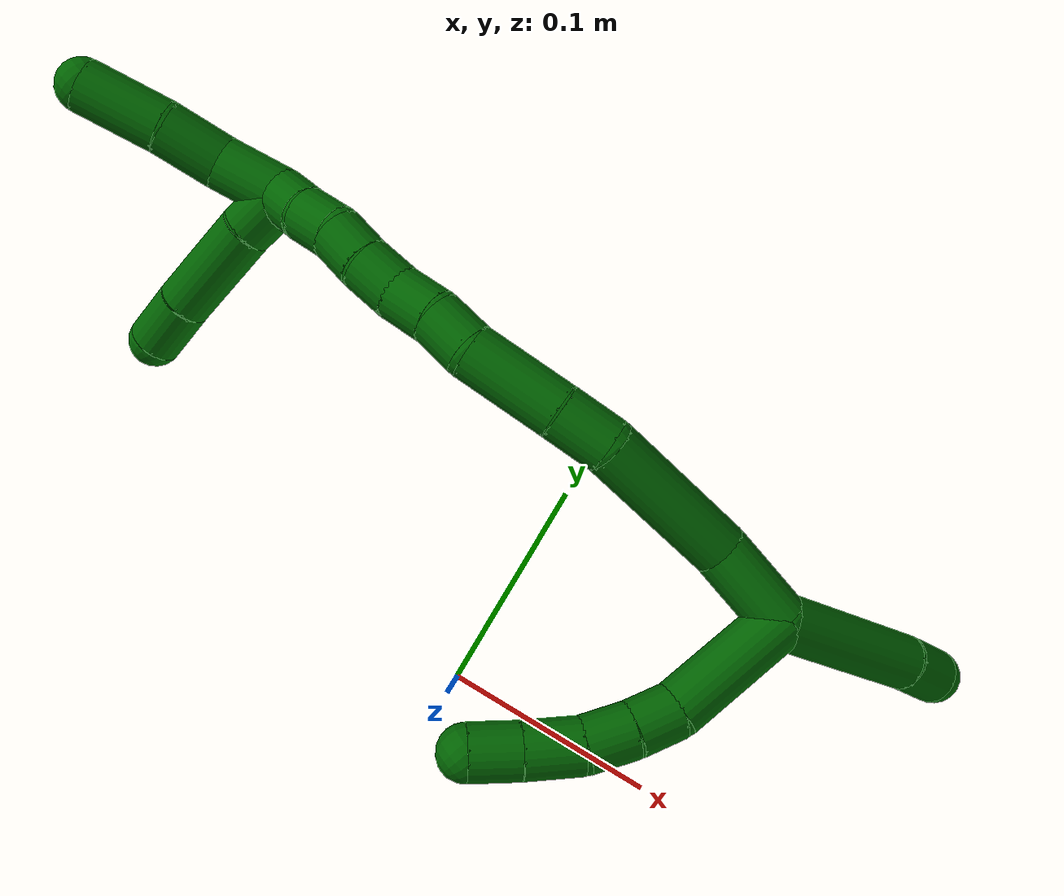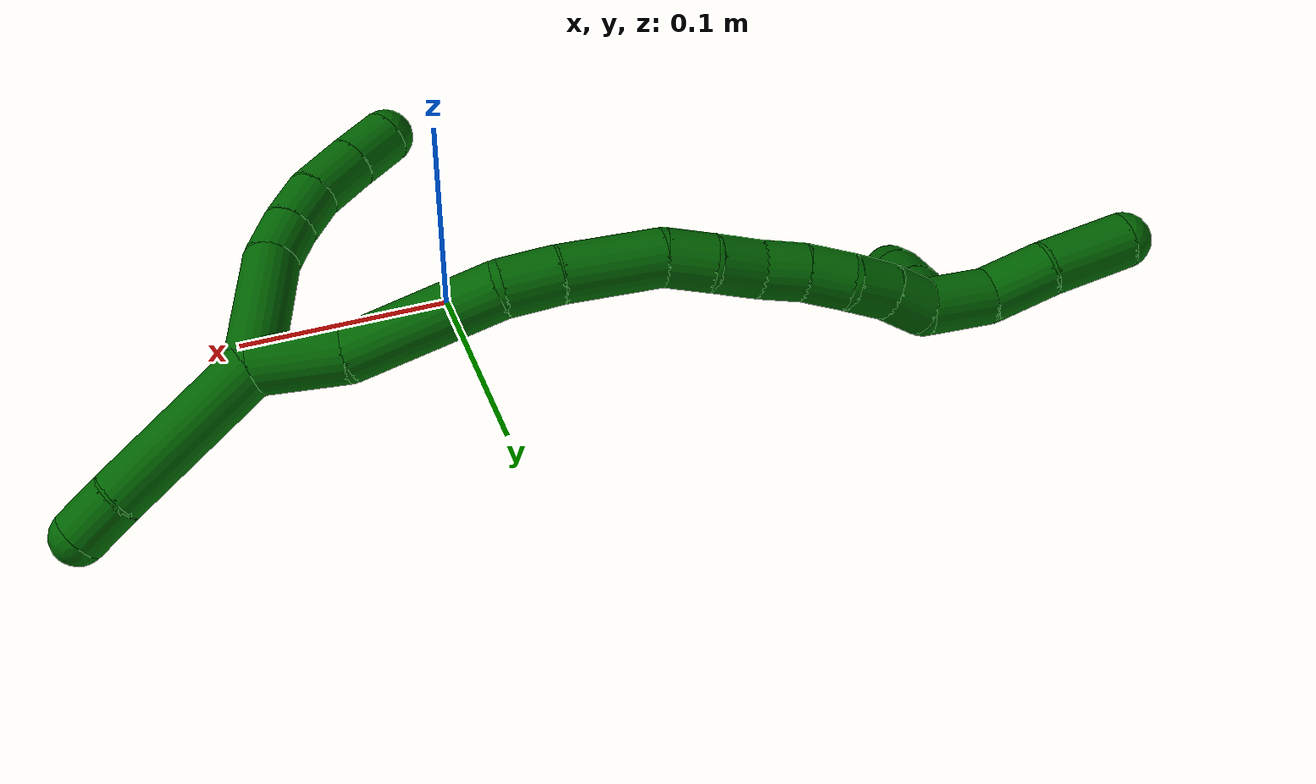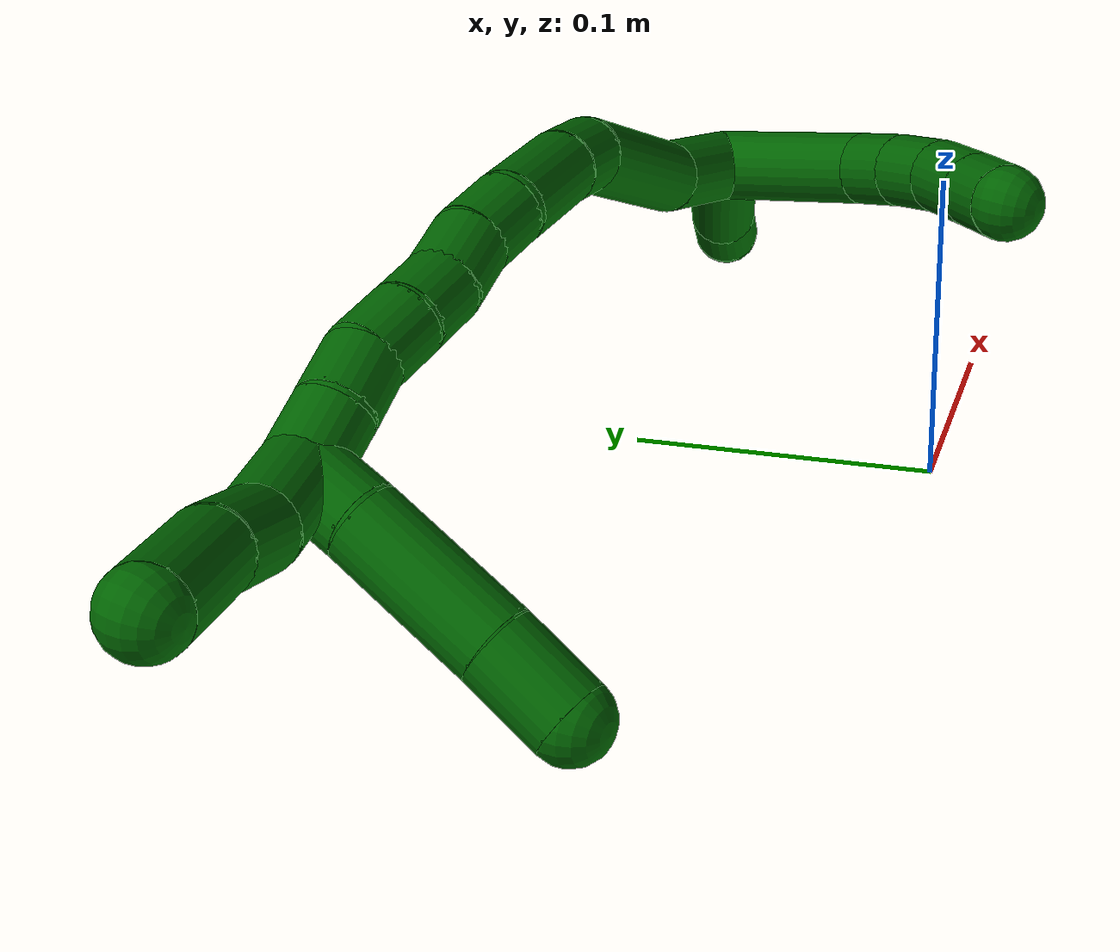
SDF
<sdf version="1.7">
 <world name="default">
  <model name="6">
   <static>0</static>
   <link name="6">
    <collision name="collision-cylinder-e_1_2_8">
     <pose>0.001377 0.006499 0.029162 -0.219286 0.046066 -0.005072</pose>
     <geometry><cylinder><radius>0.0125</radius><length>0.059818</length></cylinder></geometry>
     <surface>
      <friction><ode><mu>1.16</mu><mu2>1.16</mu2><slip1>0</slip1><slip2>0</slip2></ode></friction>
      <contact><ode><kp>1e+06</kp><kd>1</kd><max_vel>0</max_vel><min_depth>0.001</min_depth></ode></contact>
     </surface>
    </collision>
    <visual name="visual-cylinder-e_1_2_8">
     <pose>0.001377 0.006499 0.029162 -0.219286 0.046066 -0.005072</pose>
     <geometry><cylinder><radius>0.0125</radius><length>0.059818</length></cylinder></geometry>
     <material><ambient>0 0.392157 0.003922 1</ambient></material>
    </visual>
    <collision name="collision-cylinder-e_2_8_9">
     <pose>0.000774 0.0165 0.067615 -0.360408 -0.196935 0.03599</pose>
     <geometry><cylinder><radius>0.0125</radius><length>0.02025</length></cylinder></geometry>
     <surface>
      <friction><ode><mu>1.16</mu><mu2>1.16</mu2><slip1>0</slip1><slip2>0</slip2></ode></friction>
      <contact><ode><kp>1e+06</kp><kd>1</kd><max_vel>0</max_vel><min_depth>0.001</min_depth></ode></contact>
     </surface>
    </collision>
    <visual name="visual-cylinder-e_2_8_9">
     <pose>0.000774 0.0165 0.067615 -0.360408 -0.196935 0.03599</pose>
     <geometry><cylinder><radius>0.0125</radius><length>0.02025</length></cylinder></geometry>
     <material><ambient>0 0.392157 0.003922 1</ambient></material>
    </visual>
    <collision name="collision-cylinder-e_3_9_10">
     <pose>-0.00447 0.023623 0.086553 -0.359084 -0.30665 0.056081</pose>
     <geometry><cylinder><radius>0.0125</radius><length>0.021616</length></cylinder></geometry>
     <surface>
      <friction><ode><mu>1.16</mu><mu2>1.16</mu2><slip1>0</slip1><slip2>0</slip2></ode></friction>
      <contact><ode><kp>1e+06</kp><kd>1</kd><max_vel>0</max_vel><min_depth>0.001</min_depth></ode></contact>
     </surface>
    </collision>
    <visual name="visual-cylinder-e_3_9_10">
     <pose>-0.00447 0.023623 0.086553 -0.359084 -0.30665 0.056081</pose>
     <geometry><cylinder><radius>0.0125</radius><length>0.021616</length></cylinder></geometry>
     <material><ambient>0 0.392157 0.003922 1</ambient></material>
    </visual>
    <collision name="collision-cylinder-e_4_10_11">
     <pose>-0.014172 0.031572 0.106371 -0.402331 -0.527474 0.110019</pose>
     <geometry><cylinder><radius>0.0125</radius><length>0.025585</length></cylinder></geometry>
     <surface>
      <friction><ode><mu>1.16</mu><mu2>1.16</mu2><slip1>0</slip1><slip2>0</slip2></ode></friction>
      <contact><ode><kp>1e+06</kp><kd>1</kd><max_vel>0</max_vel><min_depth>0.001</min_depth></ode></contact>
     </surface>
    </collision>
    <visual name="visual-cylinder-e_4_10_11">
     <pose>-0.014172 0.031572 0.106371 -0.402331 -0.527474 0.110019</pose>
     <geometry><cylinder><radius>0.0125</radius><length>0.025585</length></cylinder></geometry>
     <material><ambient>0 0.392157 0.003922 1</ambient></material>
    </visual>
    <collision name="collision-cylinder-e_5_11_6">
     <pose>-0.026741 0.039955 0.125212 -0.437451 -0.569637 0.129975</pose>
     <geometry><cylinder><radius>0.0125</radius><length>0.02273</length></cylinder></geometry>
     <surface>
      <friction><ode><mu>1.16</mu><mu2>1.16</mu2><slip1>0</slip1><slip2>0</slip2></ode></friction>
      <contact><ode><kp>1e+06</kp><kd>1</kd><max_vel>0</max_vel><min_depth>0.001</min_depth></ode></contact>
     </surface>
    </collision>
    <visual name="visual-cylinder-e_5_11_6">
     <pose>-0.026741 0.039955 0.125212 -0.437451 -0.569637 0.129975</pose>
     <geometry><cylinder><radius>0.0125</radius><length>0.02273</length></cylinder></geometry>
     <material><ambient>0 0.392157 0.003922 1</ambient></material>
    </visual>
    <collision name="collision-cylinder-e_1_2_12">
     <pose>0.019204 -0.029091 -0.015969 2.07283 0.5246 0.851795</pose>
     <geometry><cylinder><radius>0.0125</radius><length>0.076683</length></cylinder></geometry>
     <surface>
      <friction><ode><mu>1.16</mu><mu2>1.16</mu2><slip1>0</slip1><slip2>0</slip2></ode></friction>
      <contact><ode><kp>1e+06</kp><kd>1</kd><max_vel>0</max_vel><min_depth>0.001</min_depth></ode></contact>
     </surface>
    </collision>
    <visual name="visual-cylinder-e_1_2_12">
     <pose>0.019204 -0.029091 -0.015969 2.07283 0.5246 0.851795</pose>
     <geometry><cylinder><radius>0.0125</radius><length>0.076683</length></cylinder></geometry>
     <material><ambient>0 0.392157 0.003922 1</ambient></material>
    </visual>
    <collision name="collision-cylinder-e_2_12_5">
     <pose>0.043834 -0.067791 -0.035699 1.94377 0.48406 0.694105</pose>
     <geometry><cylinder><radius>0.0125</radius><length>0.023317</length></cylinder></geometry>
     <surface>
      <friction><ode><mu>1.16</mu><mu2>1.16</mu2><slip1>0</slip1><slip2>0</slip2></ode></friction>
      <contact><ode><kp>1e+06</kp><kd>1</kd><max_vel>0</max_vel><min_depth>0.001</min_depth></ode></contact>
     </surface>
    </collision>
    <visual name="visual-cylinder-e_2_12_5">
     <pose>0.043834 -0.067791 -0.035699 1.94377 0.48406 0.694105</pose>
     <geometry><cylinder><radius>0.0125</radius><length>0.023317</length></cylinder></geometry>
     <material><ambient>0 0.392157 0.003922 1</ambient></material>
    </visual>
    <collision name="collision-cylinder-e_1_2_13">
     <pose>-0.017945 0.009287 0.000201 -1.54913 -1.09312 1.07397</pose>
     <geometry><cylinder><radius>0.0125</radius><length>0.040413</length></cylinder></geometry>
     <surface>
      <friction><ode><mu>1.16</mu><mu2>1.16</mu2><slip1>0</slip1><slip2>0</slip2></ode></friction>
      <contact><ode><kp>1e+06</kp><kd>1</kd><max_vel>0</max_vel><min_depth>0.001</min_depth></ode></contact>
     </surface>
    </collision>
    <visual name="visual-cylinder-e_1_2_13">
     <pose>-0.017945 0.009287 0.000201 -1.54913 -1.09312 1.07397</pose>
     <geometry><cylinder><radius>0.0125</radius><length>0.040413</length></cylinder></geometry>
     <material><ambient>0 0.392157 0.003922 1</ambient></material>
    </visual>
    <collision name="collision-cylinder-e_2_13_14">
     <pose>-0.061444 0.041164 0.004609 -1.38669 -0.838431 0.709305</pose>
     <geometry><cylinder><radius>0.0125</radius><length>0.068732</length></cylinder></geometry>
     <surface>
      <friction><ode><mu>1.16</mu><mu2>1.16</mu2><slip1>0</slip1><slip2>0</slip2></ode></friction>
      <contact><ode><kp>1e+06</kp><kd>1</kd><max_vel>0</max_vel><min_depth>0.001</min_depth></ode></contact>
     </surface>
    </collision>
    <visual name="visual-cylinder-e_2_13_14">
     <pose>-0.061444 0.041164 0.004609 -1.38669 -0.838431 0.709305</pose>
     <geometry><cylinder><radius>0.0125</radius><length>0.068732</length></cylinder></geometry>
     <material><ambient>0 0.392157 0.003922 1</ambient></material>
    </visual>
    <collision name="collision-cylinder-e_3_14_15">
     <pose>-0.097789 0.068899 0.011991 -1.01782 -1.0601 0.631969</pose>
     <geometry><cylinder><radius>0.0125</radius><length>0.02474</length></cylinder></geometry>
     <surface>
      <friction><ode><mu>1.16</mu><mu2>1.16</mu2><slip1>0</slip1><slip2>0</slip2></ode></friction>
      <contact><ode><kp>1e+06</kp><kd>1</kd><max_vel>0</max_vel><min_depth>0.001</min_depth></ode></contact>
     </surface>
    </collision>
    <visual name="visual-cylinder-e_3_14_15">
     <pose>-0.097789 0.068899 0.011991 -1.01782 -1.0601 0.631969</pose>
     <geometry><cylinder><radius>0.0125</radius><length>0.02474</length></cylinder></geometry>
     <material><ambient>0 0.392157 0.003922 1</ambient></material>
    </visual>
    <collision name="collision-cylinder-e_4_15_16">
     <pose>-0.128532 0.081192 0.020911 -0.893851 -1.13993 0.596047</pose>
     <geometry><cylinder><radius>0.0125</radius><length>0.043915</length></cylinder></geometry>
     <surface>
      <friction><ode><mu>1.16</mu><mu2>1.16</mu2><slip1>0</slip1><slip2>0</slip2></ode></friction>
      <contact><ode><kp>1e+06</kp><kd>1</kd><max_vel>0</max_vel><min_depth>0.001</min_depth></ode></contact>
     </surface>
    </collision>
    <visual name="visual-cylinder-e_4_15_16">
     <pose>-0.128532 0.081192 0.020911 -0.893851 -1.13993 0.596047</pose>
     <geometry><cylinder><radius>0.0125</radius><length>0.043915</length></cylinder></geometry>
     <material><ambient>0 0.392157 0.003922 1</ambient></material>
    </visual>
    <collision name="collision-cylinder-e_5_16_17">
     <pose>-0.158873 0.089615 0.027623 -0.921468 -1.41802 0.805072</pose>
     <geometry><cylinder><radius>0.0125</radius><length>0.021026</length></cylinder></geometry>
     <surface>
      <friction><ode><mu>1.16</mu><mu2>1.16</mu2><slip1>0</slip1><slip2>0</slip2></ode></friction>
      <contact><ode><kp>1e+06</kp><kd>1</kd><max_vel>0</max_vel><min_depth>0.001</min_depth></ode></contact>
     </surface>
    </collision>
    <visual name="visual-cylinder-e_5_16_17">
     <pose>-0.158873 0.089615 0.027623 -0.921468 -1.41802 0.805072</pose>
     <geometry><cylinder><radius>0.0125</radius><length>0.021026</length></cylinder></geometry>
     <material><ambient>0 0.392157 0.003922 1</ambient></material>
    </visual>
    <collision name="collision-cylinder-e_6_17_18">
     <pose>-0.179494 0.090883 0.031218 0.002251 -1.3194 -0.001746</pose>
     <geometry><cylinder><radius>0.0125</radius><length>0.021125</length></cylinder></geometry>
     <surface>
      <friction><ode><mu>1.16</mu><mu2>1.16</mu2><slip1>0</slip1><slip2>0</slip2></ode></friction>
      <contact><ode><kp>1e+06</kp><kd>1</kd><max_vel>0</max_vel><min_depth>0.001</min_depth></ode></contact>
     </surface>
    </collision>
    <visual name="visual-cylinder-e_6_17_18">
     <pose>-0.179494 0.090883 0.031218 0.002251 -1.3194 -0.001746</pose>
     <geometry><cylinder><radius>0.0125</radius><length>0.021125</length></cylinder></geometry>
     <material><ambient>0 0.392157 0.003922 1</ambient></material>
    </visual>
    <collision name="collision-cylinder-e_7_18_19">
     <pose>-0.199538 0.092339 0.035245 -0.807259 -1.36752 0.669827</pose>
     <geometry><cylinder><radius>0.0125</radius><length>0.02004</length></cylinder></geometry>
     <surface>
      <friction><ode><mu>1.16</mu><mu2>1.16</mu2><slip1>0</slip1><slip2>0</slip2></ode></friction>
      <contact><ode><kp>1e+06</kp><kd>1</kd><max_vel>0</max_vel><min_depth>0.001</min_depth></ode></contact>
     </surface>
    </collision>
    <visual name="visual-cylinder-e_7_18_19">
     <pose>-0.199538 0.092339 0.035245 -0.807259 -1.36752 0.669827</pose>
     <geometry><cylinder><radius>0.0125</radius><length>0.02004</length></cylinder></geometry>
     <material><ambient>0 0.392157 0.003922 1</ambient></material>
    </visual>
    <collision name="collision-cylinder-e_8_19_20">
     <pose>-0.219329 0.09435 0.037081 -0.89818 -1.50051 0.844371</pose>
     <geometry><cylinder><radius>0.0125</radius><length>0.020004</length></cylinder></geometry>
     <surface>
      <friction><ode><mu>1.16</mu><mu2>1.16</mu2><slip1>0</slip1><slip2>0</slip2></ode></friction>
      <contact><ode><kp>1e+06</kp><kd>1</kd><max_vel>0</max_vel><min_depth>0.001</min_depth></ode></contact>
     </surface>
    </collision>
    <visual name="visual-cylinder-e_8_19_20">
     <pose>-0.219329 0.09435 0.037081 -0.89818 -1.50051 0.844371</pose>
     <geometry><cylinder><radius>0.0125</radius><length>0.020004</length></cylinder></geometry>
     <material><ambient>0 0.392157 0.003922 1</ambient></material>
    </visual>
    <collision name="collision-cylinder-e_9_20_21">
     <pose>-0.23895 0.093874 0.039968 0.396213 -1.30214 -0.303532</pose>
     <geometry><cylinder><radius>0.0125</radius><length>0.020004</length></cylinder></geometry>
     <surface>
      <friction><ode><mu>1.16</mu><mu2>1.16</mu2><slip1>0</slip1><slip2>0</slip2></ode></friction>
      <contact><ode><kp>1e+06</kp><kd>1</kd><max_vel>0</max_vel><min_depth>0.001</min_depth></ode></contact>
     </surface>
    </collision>
    <visual name="visual-cylinder-e_9_20_21">
     <pose>-0.23895 0.093874 0.039968 0.396213 -1.30214 -0.303532</pose>
     <geometry><cylinder><radius>0.0125</radius><length>0.020004</length></cylinder></geometry>
     <material><ambient>0 0.392157 0.003922 1</ambient></material>
    </visual>
    <collision name="collision-cylinder-e_10_21_1">
     <pose>-0.258217 0.090561 0.043882 1.00156 -1.29557 -0.785314</pose>
     <geometry><cylinder><radius>0.0125</radius><length>0.020002</length></cylinder></geometry>
     <surface>
      <friction><ode><mu>1.16</mu><mu2>1.16</mu2><slip1>0</slip1><slip2>0</slip2></ode></friction>
      <contact><ode><kp>1e+06</kp><kd>1</kd><max_vel>0</max_vel><min_depth>0.001</min_depth></ode></contact>
     </surface>
    </collision>
    <visual name="visual-cylinder-e_10_21_1">
     <pose>-0.258217 0.090561 0.043882 1.00156 -1.29557 -0.785314</pose>
     <geometry><cylinder><radius>0.0125</radius><length>0.020002</length></cylinder></geometry>
     <material><ambient>0 0.392157 0.003922 1</ambient></material>
    </visual>
    <collision name="collision-cylinder-e_1_1_22">
     <pose>-0.269537 0.084759 0.056413 0.307343 -0.144975 -0.022494</pose>
     <geometry><cylinder><radius>0.0125</radius><length>0.023466</length></cylinder></geometry>
     <surface>
      <friction><ode><mu>1.16</mu><mu2>1.16</mu2><slip1>0</slip1><slip2>0</slip2></ode></friction>
      <contact><ode><kp>1e+06</kp><kd>1</kd><max_vel>0</max_vel><min_depth>0.001</min_depth></ode></contact>
     </surface>
    </collision>
    <visual name="visual-cylinder-e_1_1_22">
     <pose>-0.269537 0.084759 0.056413 0.307343 -0.144975 -0.022494</pose>
     <geometry><cylinder><radius>0.0125</radius><length>0.023466</length></cylinder></geometry>
     <material><ambient>0 0.392157 0.003922 1</ambient></material>
    </visual>
    <collision name="collision-cylinder-e_2_22_23">
     <pose>-0.274299 0.071157 0.089835 0.423947 -0.124418 -0.026809</pose>
     <geometry><cylinder><radius>0.0125</radius><length>0.049437</length></cylinder></geometry>
     <surface>
      <friction><ode><mu>1.16</mu><mu2>1.16</mu2><slip1>0</slip1><slip2>0</slip2></ode></friction>
      <contact><ode><kp>1e+06</kp><kd>1</kd><max_vel>0</max_vel><min_depth>0.001</min_depth></ode></contact>
     </surface>
    </collision>
    <visual name="visual-cylinder-e_2_22_23">
     <pose>-0.274299 0.071157 0.089835 0.423947 -0.124418 -0.026809</pose>
     <geometry><cylinder><radius>0.0125</radius><length>0.049437</length></cylinder></geometry>
     <material><ambient>0 0.392157 0.003922 1</ambient></material>
    </visual>
    <collision name="collision-cylinder-e_3_23_4">
     <pose>-0.279122 0.054743 0.124043 0.490172 -0.129883 -0.032528</pose>
     <geometry><cylinder><radius>0.0125</radius><length>0.027097</length></cylinder></geometry>
     <surface>
      <friction><ode><mu>1.16</mu><mu2>1.16</mu2><slip1>0</slip1><slip2>0</slip2></ode></friction>
      <contact><ode><kp>1e+06</kp><kd>1</kd><max_vel>0</max_vel><min_depth>0.001</min_depth></ode></contact>
     </surface>
    </collision>
    <visual name="visual-cylinder-e_3_23_4">
     <pose>-0.279122 0.054743 0.124043 0.490172 -0.129883 -0.032528</pose>
     <geometry><cylinder><radius>0.0125</radius><length>0.027097</length></cylinder></geometry>
     <material><ambient>0 0.392157 0.003922 1</ambient></material>
    </visual>
    <collision name="collision-cylinder-e_1_1_24">
     <pose>-0.281965 0.092058 0.050895 -0.598896 -1.12685 0.385233</pose>
     <geometry><cylinder><radius>0.0125</radius><length>0.031279</length></cylinder></geometry>
     <surface>
      <friction><ode><mu>1.16</mu><mu2>1.16</mu2><slip1>0</slip1><slip2>0</slip2></ode></friction>
      <contact><ode><kp>1e+06</kp><kd>1</kd><max_vel>0</max_vel><min_depth>0.001</min_depth></ode></contact>
     </surface>
    </collision>
    <visual name="visual-cylinder-e_1_1_24">
     <pose>-0.281965 0.092058 0.050895 -0.598896 -1.12685 0.385233</pose>
     <geometry><cylinder><radius>0.0125</radius><length>0.031279</length></cylinder></geometry>
     <material><ambient>0 0.392157 0.003922 1</ambient></material>
    </visual>
    <collision name="collision-cylinder-e_2_24_25">
     <pose>-0.307445 0.103928 0.061089 -1.04913 -0.883422 0.534173</pose>
     <geometry><cylinder><radius>0.0125</radius><length>0.029387</length></cylinder></geometry>
     <surface>
      <friction><ode><mu>1.16</mu><mu2>1.16</mu2><slip1>0</slip1><slip2>0</slip2></ode></friction>
      <contact><ode><kp>1e+06</kp><kd>1</kd><max_vel>0</max_vel><min_depth>0.001</min_depth></ode></contact>
     </surface>
    </collision>
    <visual name="visual-cylinder-e_2_24_25">
     <pose>-0.307445 0.103928 0.061089 -1.04913 -0.883422 0.534173</pose>
     <geometry><cylinder><radius>0.0125</radius><length>0.029387</length></cylinder></geometry>
     <material><ambient>0 0.392157 0.003922 1</ambient></material>
    </visual>
    <collision name="collision-cylinder-e_3_25_3">
     <pose>-0.335047 0.120194 0.073214 -0.830285 -0.971967 0.457502</pose>
     <geometry><cylinder><radius>0.0125</radius><length>0.039334</length></cylinder></geometry>
     <surface>
      <friction><ode><mu>1.16</mu><mu2>1.16</mu2><slip1>0</slip1><slip2>0</slip2></ode></friction>
      <contact><ode><kp>1e+06</kp><kd>1</kd><max_vel>0</max_vel><min_depth>0.001</min_depth></ode></contact>
     </surface>
    </collision>
    <visual name="visual-cylinder-e_3_25_3">
     <pose>-0.335047 0.120194 0.073214 -0.830285 -0.971967 0.457502</pose>
     <geometry><cylinder><radius>0.0125</radius><length>0.039334</length></cylinder></geometry>
     <material><ambient>0 0.392157 0.003922 1</ambient></material>
    </visual>
    <collision name="collision-sphere-3">
     <pose>-0.351292 0.128377 0.080694 0 -0 0</pose>
     <geometry><sphere><radius>0.0125</radius></sphere></geometry>
     <surface>
      <friction><ode><mu>1.16</mu><mu2>1.16</mu2><slip1>0</slip1><slip2>0</slip2></ode></friction>
      <contact><ode><kp>1e+06</kp><kd>1</kd><max_vel>0</max_vel><min_depth>0.001</min_depth></ode></contact>
     </surface>
    </collision>
    <visual name="visual-sphere-3">
     <pose>-0.351292 0.128377 0.080694 0 -0 0</pose>
     <geometry><sphere><radius>0.0125</radius></sphere></geometry>
     <material><ambient>0 0.392157 0.003922 1</ambient></material>
    </visual>
    <collision name="collision-sphere-25">
     <pose>-0.318802 0.112011 0.065735 0 -0 0</pose>
     <geometry><sphere><radius>0.0125</radius></sphere></geometry>
     <surface>
      <friction><ode><mu>1.16</mu><mu2>1.16</mu2><slip1>0</slip1><slip2>0</slip2></ode></friction>
      <contact><ode><kp>1e+06</kp><kd>1</kd><max_vel>0</max_vel><min_depth>0.001</min_depth></ode></contact>
     </surface>
    </collision>
    <visual name="visual-sphere-25">
     <pose>-0.318802 0.112011 0.065735 0 -0 0</pose>
     <geometry><sphere><radius>0.0125</radius></sphere></geometry>
     <material><ambient>0 0.392157 0.003922 1</ambient></material>
    </visual>
    <collision name="collision-sphere-24">
     <pose>-0.296088 0.095845 0.056443 0 -0 0</pose>
     <geometry><sphere><radius>0.0125</radius></sphere></geometry>
     <surface>
      <friction><ode><mu>1.16</mu><mu2>1.16</mu2><slip1>0</slip1><slip2>0</slip2></ode></friction>
      <contact><ode><kp>1e+06</kp><kd>1</kd><max_vel>0</max_vel><min_depth>0.001</min_depth></ode></contact>
     </surface>
    </collision>
    <visual name="visual-sphere-24">
     <pose>-0.296088 0.095845 0.056443 0 -0 0</pose>
     <geometry><sphere><radius>0.0125</radius></sphere></geometry>
     <material><ambient>0 0.392157 0.003922 1</ambient></material>
    </visual>
    <collision name="collision-sphere-4">
     <pose>-0.280876 0.048418 0.135896 0 -0 0</pose>
     <geometry><sphere><radius>0.0125</radius></sphere></geometry>
     <surface>
      <friction><ode><mu>1.16</mu><mu2>1.16</mu2><slip1>0</slip1><slip2>0</slip2></ode></friction>
      <contact><ode><kp>1e+06</kp><kd>1</kd><max_vel>0</max_vel><min_depth>0.001</min_depth></ode></contact>
     </surface>
    </collision>
    <visual name="visual-sphere-4">
     <pose>-0.280876 0.048418 0.135896 0 -0 0</pose>
     <geometry><sphere><radius>0.0125</radius></sphere></geometry>
     <material><ambient>0 0.392157 0.003922 1</ambient></material>
    </visual>
    <collision name="collision-sphere-23">
     <pose>-0.277367 0.061067 0.112191 0 -0 0</pose>
     <geometry><sphere><radius>0.0125</radius></sphere></geometry>
     <surface>
      <friction><ode><mu>1.16</mu><mu2>1.16</mu2><slip1>0</slip1><slip2>0</slip2></ode></friction>
      <contact><ode><kp>1e+06</kp><kd>1</kd><max_vel>0</max_vel><min_depth>0.001</min_depth></ode></contact>
     </surface>
    </collision>
    <visual name="visual-sphere-23">
     <pose>-0.277367 0.061067 0.112191 0 -0 0</pose>
     <geometry><sphere><radius>0.0125</radius></sphere></geometry>
     <material><ambient>0 0.392157 0.003922 1</ambient></material>
    </visual>
    <collision name="collision-sphere-22">
     <pose>-0.271232 0.081247 0.067479 0 -0 0</pose>
     <geometry><sphere><radius>0.0125</radius></sphere></geometry>
     <surface>
      <friction><ode><mu>1.16</mu><mu2>1.16</mu2><slip1>0</slip1><slip2>0</slip2></ode></friction>
      <contact><ode><kp>1e+06</kp><kd>1</kd><max_vel>0</max_vel><min_depth>0.001</min_depth></ode></contact>
     </surface>
    </collision>
    <visual name="visual-sphere-22">
     <pose>-0.271232 0.081247 0.067479 0 -0 0</pose>
     <geometry><sphere><radius>0.0125</radius></sphere></geometry>
     <material><ambient>0 0.392157 0.003922 1</ambient></material>
    </visual>
    <collision name="collision-sphere-1">
     <pose>-0.267842 0.088271 0.045347 0 -0 0</pose>
     <geometry><sphere><radius>0.0125</radius></sphere></geometry>
     <surface>
      <friction><ode><mu>1.16</mu><mu2>1.16</mu2><slip1>0</slip1><slip2>0</slip2></ode></friction>
      <contact><ode><kp>1e+06</kp><kd>1</kd><max_vel>0</max_vel><min_depth>0.001</min_depth></ode></contact>
     </surface>
    </collision>
    <visual name="visual-sphere-1">
     <pose>-0.267842 0.088271 0.045347 0 -0 0</pose>
     <geometry><sphere><radius>0.0125</radius></sphere></geometry>
     <material><ambient>0 0.392157 0.003922 1</ambient></material>
    </visual>
    <collision name="collision-sphere-21">
     <pose>-0.248593 0.09285 0.042417 0 -0 0</pose>
     <geometry><sphere><radius>0.0125</radius></sphere></geometry>
     <surface>
      <friction><ode><mu>1.16</mu><mu2>1.16</mu2><slip1>0</slip1><slip2>0</slip2></ode></friction>
      <contact><ode><kp>1e+06</kp><kd>1</kd><max_vel>0</max_vel><min_depth>0.001</min_depth></ode></contact>
     </surface>
    </collision>
    <visual name="visual-sphere-21">
     <pose>-0.248593 0.09285 0.042417 0 -0 0</pose>
     <geometry><sphere><radius>0.0125</radius></sphere></geometry>
     <material><ambient>0 0.392157 0.003922 1</ambient></material>
    </visual>
    <collision name="collision-sphere-6">
     <pose>-0.03287 0.044009 0.133881 0 -0 0</pose>
     <geometry><sphere><radius>0.0125</radius></sphere></geometry>
     <surface>
      <friction><ode><mu>1.16</mu><mu2>1.16</mu2><slip1>0</slip1><slip2>0</slip2></ode></friction>
      <contact><ode><kp>1e+06</kp><kd>1</kd><max_vel>0</max_vel><min_depth>0.001</min_depth></ode></contact>
     </surface>
    </collision>
    <visual name="visual-sphere-6">
     <pose>-0.03287 0.044009 0.133881 0 -0 0</pose>
     <geometry><sphere><radius>0.0125</radius></sphere></geometry>
     <material><ambient>0 0.392157 0.003922 1</ambient></material>
    </visual>
    <collision name="collision-sphere-11">
     <pose>-0.020611 0.035901 0.116543 0 -0 0</pose>
     <geometry><sphere><radius>0.0125</radius></sphere></geometry>
     <surface>
      <friction><ode><mu>1.16</mu><mu2>1.16</mu2><slip1>0</slip1><slip2>0</slip2></ode></friction>
      <contact><ode><kp>1e+06</kp><kd>1</kd><max_vel>0</max_vel><min_depth>0.001</min_depth></ode></contact>
     </surface>
    </collision>
    <visual name="visual-sphere-11">
     <pose>-0.020611 0.035901 0.116543 0 -0 0</pose>
     <geometry><sphere><radius>0.0125</radius></sphere></geometry>
     <material><ambient>0 0.392157 0.003922 1</ambient></material>
    </visual>
    <collision name="collision-sphere-10">
     <pose>-0.007733 0.027244 0.0962 0 -0 0</pose>
     <geometry><sphere><radius>0.0125</radius></sphere></geometry>
     <surface>
      <friction><ode><mu>1.16</mu><mu2>1.16</mu2><slip1>0</slip1><slip2>0</slip2></ode></friction>
      <contact><ode><kp>1e+06</kp><kd>1</kd><max_vel>0</max_vel><min_depth>0.001</min_depth></ode></contact>
     </surface>
    </collision>
    <visual name="visual-sphere-10">
     <pose>-0.007733 0.027244 0.0962 0 -0 0</pose>
     <geometry><sphere><radius>0.0125</radius></sphere></geometry>
     <material><ambient>0 0.392157 0.003922 1</ambient></material>
    </visual>
    <collision name="collision-sphere-9">
     <pose>-0.001208 0.020002 0.076906 0 -0 0</pose>
     <geometry><sphere><radius>0.0125</radius></sphere></geometry>
     <surface>
      <friction><ode><mu>1.16</mu><mu2>1.16</mu2><slip1>0</slip1><slip2>0</slip2></ode></friction>
      <contact><ode><kp>1e+06</kp><kd>1</kd><max_vel>0</max_vel><min_depth>0.001</min_depth></ode></contact>
     </surface>
    </collision>
    <visual name="visual-sphere-9">
     <pose>-0.001208 0.020002 0.076906 0 -0 0</pose>
     <geometry><sphere><radius>0.0125</radius></sphere></geometry>
     <material><ambient>0 0.392157 0.003922 1</ambient></material>
    </visual>
    <collision name="collision-sphere-2">
     <geometry><sphere><radius>0.0125</radius></sphere></geometry>
     <surface>
      <friction><ode><mu>1.16</mu><mu2>1.16</mu2><slip1>0</slip1><slip2>0</slip2></ode></friction>
      <contact><ode><kp>1e+06</kp><kd>1</kd><max_vel>0</max_vel><min_depth>0.001</min_depth></ode></contact>
     </surface>
    </collision>
    <visual name="visual-sphere-2">
     <geometry><sphere><radius>0.0125</radius></sphere></geometry>
     <material><ambient>0 0.392157 0.003922 1</ambient></material>
    </visual>
    <collision name="collision-sphere-19">
     <pose>-0.209352 0.0938 0.036643 0 -0 0</pose>
     <geometry><sphere><radius>0.0125</radius></sphere></geometry>
     <surface>
      <friction><ode><mu>1.16</mu><mu2>1.16</mu2><slip1>0</slip1><slip2>0</slip2></ode></friction>
      <contact><ode><kp>1e+06</kp><kd>1</kd><max_vel>0</max_vel><min_depth>0.001</min_depth></ode></contact>
     </surface>
    </collision>
    <visual name="visual-sphere-19">
     <pose>-0.209352 0.0938 0.036643 0 -0 0</pose>
     <geometry><sphere><radius>0.0125</radius></sphere></geometry>
     <material><ambient>0 0.392157 0.003922 1</ambient></material>
    </visual>
    <collision name="collision-sphere-8">
     <pose>0.002755 0.012999 0.058324 0 -0 0</pose>
     <geometry><sphere><radius>0.0125</radius></sphere></geometry>
     <surface>
      <friction><ode><mu>1.16</mu><mu2>1.16</mu2><slip1>0</slip1><slip2>0</slip2></ode></friction>
      <contact><ode><kp>1e+06</kp><kd>1</kd><max_vel>0</max_vel><min_depth>0.001</min_depth></ode></contact>
     </surface>
    </collision>
    <visual name="visual-sphere-8">
     <pose>0.002755 0.012999 0.058324 0 -0 0</pose>
     <geometry><sphere><radius>0.0125</radius></sphere></geometry>
     <material><ambient>0 0.392157 0.003922 1</ambient></material>
    </visual>
    <collision name="collision-sphere-12">
     <pose>0.038408 -0.058181 -0.031939 0 -0 0</pose>
     <geometry><sphere><radius>0.0125</radius></sphere></geometry>
     <surface>
      <friction><ode><mu>1.16</mu><mu2>1.16</mu2><slip1>0</slip1><slip2>0</slip2></ode></friction>
      <contact><ode><kp>1e+06</kp><kd>1</kd><max_vel>0</max_vel><min_depth>0.001</min_depth></ode></contact>
     </surface>
    </collision>
    <visual name="visual-sphere-12">
     <pose>0.038408 -0.058181 -0.031939 0 -0 0</pose>
     <geometry><sphere><radius>0.0125</radius></sphere></geometry>
     <material><ambient>0 0.392157 0.003922 1</ambient></material>
    </visual>
    <collision name="collision-sphere-5">
     <pose>0.049259 -0.0774 -0.039459 0 -0 0</pose>
     <geometry><sphere><radius>0.0125</radius></sphere></geometry>
     <surface>
      <friction><ode><mu>1.16</mu><mu2>1.16</mu2><slip1>0</slip1><slip2>0</slip2></ode></friction>
      <contact><ode><kp>1e+06</kp><kd>1</kd><max_vel>0</max_vel><min_depth>0.001</min_depth></ode></contact>
     </surface>
    </collision>
    <visual name="visual-sphere-5">
     <pose>0.049259 -0.0774 -0.039459 0 -0 0</pose>
     <geometry><sphere><radius>0.0125</radius></sphere></geometry>
     <material><ambient>0 0.392157 0.003922 1</ambient></material>
    </visual>
    <collision name="collision-sphere-13">
     <pose>-0.03589 0.018574 0.000403 0 -0 0</pose>
     <geometry><sphere><radius>0.0125</radius></sphere></geometry>
     <surface>
      <friction><ode><mu>1.16</mu><mu2>1.16</mu2><slip1>0</slip1><slip2>0</slip2></ode></friction>
      <contact><ode><kp>1e+06</kp><kd>1</kd><max_vel>0</max_vel><min_depth>0.001</min_depth></ode></contact>
     </surface>
    </collision>
    <visual name="visual-sphere-13">
     <pose>-0.03589 0.018574 0.000403 0 -0 0</pose>
     <geometry><sphere><radius>0.0125</radius></sphere></geometry>
     <material><ambient>0 0.392157 0.003922 1</ambient></material>
    </visual>
    <collision name="collision-sphere-14">
     <pose>-0.086998 0.063754 0.008816 0 -0 0</pose>
     <geometry><sphere><radius>0.0125</radius></sphere></geometry>
     <surface>
      <friction><ode><mu>1.16</mu><mu2>1.16</mu2><slip1>0</slip1><slip2>0</slip2></ode></friction>
      <contact><ode><kp>1e+06</kp><kd>1</kd><max_vel>0</max_vel><min_depth>0.001</min_depth></ode></contact>
     </surface>
    </collision>
    <visual name="visual-sphere-14">
     <pose>-0.086998 0.063754 0.008816 0 -0 0</pose>
     <geometry><sphere><radius>0.0125</radius></sphere></geometry>
     <material><ambient>0 0.392157 0.003922 1</ambient></material>
    </visual>
    <collision name="collision-sphere-15">
     <pose>-0.108581 0.074044 0.015167 0 -0 0</pose>
     <geometry><sphere><radius>0.0125</radius></sphere></geometry>
     <surface>
      <friction><ode><mu>1.16</mu><mu2>1.16</mu2><slip1>0</slip1><slip2>0</slip2></ode></friction>
      <contact><ode><kp>1e+06</kp><kd>1</kd><max_vel>0</max_vel><min_depth>0.001</min_depth></ode></contact>
     </surface>
    </collision>
    <visual name="visual-sphere-15">
     <pose>-0.108581 0.074044 0.015167 0 -0 0</pose>
     <geometry><sphere><radius>0.0125</radius></sphere></geometry>
     <material><ambient>0 0.392157 0.003922 1</ambient></material>
    </visual>
    <collision name="collision-sphere-16">
     <pose>-0.148482 0.088341 0.026656 0 -0 0</pose>
     <geometry><sphere><radius>0.0125</radius></sphere></geometry>
     <surface>
      <friction><ode><mu>1.16</mu><mu2>1.16</mu2><slip1>0</slip1><slip2>0</slip2></ode></friction>
      <contact><ode><kp>1e+06</kp><kd>1</kd><max_vel>0</max_vel><min_depth>0.001</min_depth></ode></contact>
     </surface>
    </collision>
    <visual name="visual-sphere-16">
     <pose>-0.148482 0.088341 0.026656 0 -0 0</pose>
     <geometry><sphere><radius>0.0125</radius></sphere></geometry>
     <material><ambient>0 0.392157 0.003922 1</ambient></material>
    </visual>
    <collision name="collision-sphere-17">
     <pose>-0.169263 0.090889 0.028591 0 -0 0</pose>
     <geometry><sphere><radius>0.0125</radius></sphere></geometry>
     <surface>
      <friction><ode><mu>1.16</mu><mu2>1.16</mu2><slip1>0</slip1><slip2>0</slip2></ode></friction>
      <contact><ode><kp>1e+06</kp><kd>1</kd><max_vel>0</max_vel><min_depth>0.001</min_depth></ode></contact>
     </surface>
    </collision>
    <visual name="visual-sphere-17">
     <pose>-0.169263 0.090889 0.028591 0 -0 0</pose>
     <geometry><sphere><radius>0.0125</radius></sphere></geometry>
     <material><ambient>0 0.392157 0.003922 1</ambient></material>
    </visual>
    <collision name="collision-sphere-18">
     <pose>-0.189725 0.090878 0.033846 0 -0 0</pose>
     <geometry><sphere><radius>0.0125</radius></sphere></geometry>
     <surface>
      <friction><ode><mu>1.16</mu><mu2>1.16</mu2><slip1>0</slip1><slip2>0</slip2></ode></friction>
      <contact><ode><kp>1e+06</kp><kd>1</kd><max_vel>0</max_vel><min_depth>0.001</min_depth></ode></contact>
     </surface>
    </collision>
    <visual name="visual-sphere-18">
     <pose>-0.189725 0.090878 0.033846 0 -0 0</pose>
     <geometry><sphere><radius>0.0125</radius></sphere></geometry>
     <material><ambient>0 0.392157 0.003922 1</ambient></material>
    </visual>
    <collision name="collision-sphere-20">
     <pose>-0.229307 0.094899 0.037519 0 -0 0</pose>
     <geometry><sphere><radius>0.0125</radius></sphere></geometry>
     <surface>
      <friction><ode><mu>1.16</mu><mu2>1.16</mu2><slip1>0</slip1><slip2>0</slip2></ode></friction>
      <contact><ode><kp>1e+06</kp><kd>1</kd><max_vel>0</max_vel><min_depth>0.001</min_depth></ode></contact>
     </surface>
    </collision>
    <visual name="visual-sphere-20">
     <pose>-0.229307 0.094899 0.037519 0 -0 0</pose>
     <geometry><sphere><radius>0.0125</radius></sphere></geometry>
     <material><ambient>0 0.392157 0.003922 1</ambient></material>
    </visual>
    <inertial>
     <pose>-0.127242 0.048661 0.039725 0 -0 0</pose>
     <mass>0.75</mass>
     <inertia>
      <ixx>0.000119</ixx>
      <ixy>0</ixy>
      <ixz>0</ixz>
      <iyy>0.000151</iyy>
      <iyz>0</iyz>
      <izz>6.2e-05</izz>
     </inertia>
    </inertial>
   </link>
   <pose>0.105857 0.096083 0.06679 1.64354 -0.329377 -0.353271</pose>
  </model>
 </world>
</sdf>
